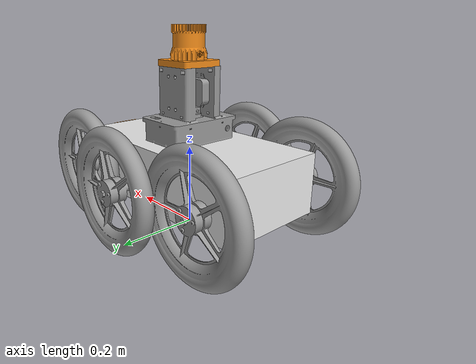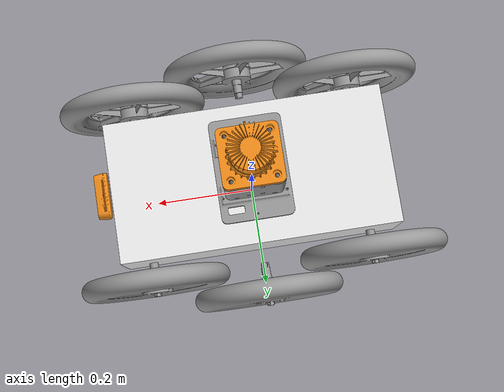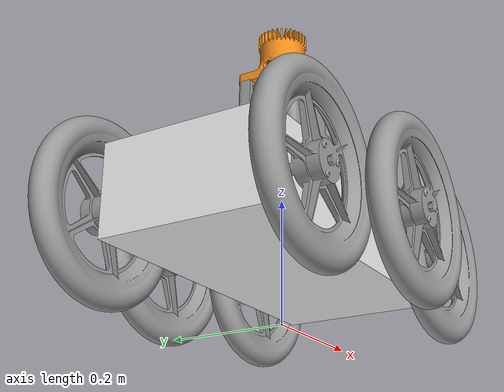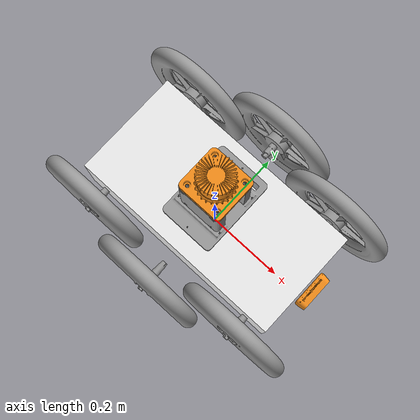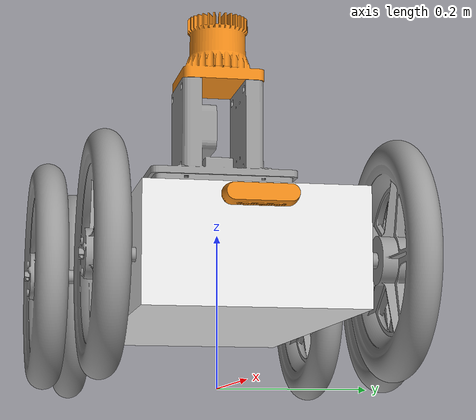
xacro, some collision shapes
<?xml version='1.0'?>
<robot name="espeleo" xmlns:xacro="http://www.ros.org/wiki/xacro">

  <xacro:property name="PI" value="3.1415926535897931"/>
  <xacro:property name="Half_PI" value="1.570796327"/>

  <xacro:property name="chassisGround" value="0.15"/>
  <xacro:property name="chassisHeight" value="0.145"/>
  <xacro:property name="chassisLength" value="0.54"/>
  <xacro:property name="chassisWidth" value="0.27"/>
  <xacro:property name="chassisMass" value="0.5"/>

  <xacro:property name="wheelWidth" value="0.043"/>
  <xacro:property name="wheelRadius" value="0.14"/>

  <xacro:property name="wheelPos_x" value="0.215"/>
  <xacro:property name="wheelPos_y" value="0.175"/>
  <xacro:property name="wheelMass" value="0.2"/>

  <xacro:include filename="$(find espeleo_description)/urdf/espeleo_xacro/espeleo.gazebo" />
  <xacro:include filename="$(find espeleo_description)/urdf/espeleo_xacro/materials.xacro" />
  <xacro:include filename="$(find espeleo_description)/urdf/espeleo_xacro/macros_espeleo.xacro" />

  <!--					Espeleo Configurations					 -->

  <!-- If you need to use EspeleoRobo with tower configuration use this include-->
  <xacro:include filename="$(find espeleo_description)/urdf/espeleo_xacro/espeleo_sensors.xacro" />

  <!-- If you need to use EspeleoRobo with PanTilt configuration use this include-->

  <!-- For the sensorless EspeleoRobo comment the two includes above  -->

  <link name="base_link" />

  <joint name="base_joint" type="fixed">
    <axis xyz="0 0 0" />
    <origin xyz="0 0 .15 " rpy="0 0 0"/>
    <parent link="base_link"/>
    <child link="chassis"/>
  </joint>

  <link name='chassis'>

    <collision>

      <origin xyz="0 0 0" rpy="0 0 0"/>
      <geometry>
        <box size="${chassisLength} ${chassisWidth} ${chassisHeight}"/>
      </geometry>

    </collision>

    <visual>

      <origin xyz="-0.283 -0.23 0.0752" rpy="${-Half_PI} 0 0"/>
      <geometry>
        <mesh filename="package://espeleo_description/urdf/stl/Espeleo-22.STL" scale="0.001 0.001 0.001"/>
      </geometry>
      <material name="white"/>

    </visual>

    <inertial>

      <origin xyz="0 0 ${chassisGround}" rpy="0 0 0"/>
      <mass value="${chassisMass}"/>
      <box_inertia m="${chassisMass}" x="${chassisLength}" y="${chassisWidth}" z="0"/>

    </inertial>

  </link>

  <wheel lr="left_front" x_pos="${wheelPos_x}" y_pos="${wheelPos_y}" rot="0"/>
  <wheel lr="left_middle" x_pos="0.0" y_pos="0.225" rot="0"/>
  <wheel lr="left_back" x_pos="-${wheelPos_x}" y_pos="${wheelPos_y}" rot="0"/>
  <wheel lr="right_front" x_pos="${wheelPos_x}" y_pos="-${wheelPos_y}" rot="${PI}"/>
  <wheel lr="right_middle" x_pos="0.0" y_pos="-0.225" rot="${PI}"/>
  <wheel lr="right_back" x_pos="-${wheelPos_x}" y_pos="-${wheelPos_y}" rot="${PI}"/>

  <!-- Imu -->

  <link name="imu_link"/>

   <joint name="imu_joint" type="fixed">

    <axis xyz="0 1 0" />
    <origin xyz="0.1275 -0.0175 0.0445" rpy="0 0 0"/>
    <parent link="chassis"/>
    <child link="imu_link"/>

  </joint>

  <!-- GPS -->
  <link name="gps_antenna"/>

  <joint name="gps_antenna_joint" type="fixed">

    <axis xyz="0 0 0" />
    <origin xyz="0 0 0.1 " rpy="0 0 0"/>
    <parent link="imu_link"/>
    <child link="gps_antenna"/>

  </joint>

</robot>

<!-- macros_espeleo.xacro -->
<robot>

  <macro name="cylinder_inertia" params="m r h">
    <inertia
      ixx="${m*(3*r*r+h*h)/12}" ixy = "0" ixz = "0"
      iyy="${m*(3*r*r+h*h)/12}" iyz = "0"
      izz="${m*r*r/2}"
    />
  </macro>

  <macro name="box_inertia" params="m x y z">
    <inertia
      ixx="${m*(x*x+z*z)/12}" ixy = "0" ixz = "0"
      iyy="${m*(y*y+z*z)/12}" iyz = "0"
      izz="${m*(x*x+y*y)/12}"
    />
  </macro>

  <macro name="sphere_inertia" params="m r">
    <inertia
      ixx="${2*m*r*r/5}" ixy = "0" ixz = "0"
      iyy="${2*m*r*r/5}" iyz = "0"
      izz="${2*m*r*r/5}"
    />
  </macro>

  <!-- params = left/right XPosition YPosition -->

  <macro name="wheel" params="lr x_pos y_pos rot">
    <link name="${lr}_wheel">
      <collision>
        <origin xyz="0 0 0" rpy="${PI/2} 0 0" />
        <geometry>
          <cylinder length="${wheelWidth}" radius="${wheelRadius}"/>
        </geometry>
      </collision>

      <visual>
        <origin xyz="0 0 0" rpy="0 0 0" />
        <geometry>
          <mesh filename="package://espeleo_description/urdf/stl/roda_esquerda.stl" />
        </geometry>
        <material name="grey"/>
      </visual>

      <inertial>
        <origin xyz="0 0 0" rpy="${PI/2} 0 0 " />
        <mass value="${wheelMass}"/>
        <cylinder_inertia m="${wheelMass}" r="${wheelRadius}" h="${wheelWidth}"/>
      </inertial>
    </link>

    <gazebo reference="${lr}_wheel">
      <mu1 value="1"/>
      <mu2 value="1"/>
      <kp  value="1000000.0" />
      <kd  value="10.0" />
      <fdir1 value="0 0 1"/>
      <minDepth>0.001</minDepth>
      <maxContacts>1</maxContacts>
      <material>Gazebo/Red</material>
    </gazebo>

    <joint name="${lr}_wheel_joint" type="continuous">
      <parent link="chassis"/>
      <child link="${lr}_wheel"/>
      <origin xyz="${x_pos} ${y_pos} -0.008" rpy="0 0 ${rot}" />
      <axis xyz="0 1 0" rpy="0 0 0" />
      <limit effort="100" velocity="10000"/>
      <joint_properties damping="0.0" friction="0.0"/>
    </joint>

    <transmission name="${lr}_trans">
      <type>transmission_interface/SimpleTransmission</type>
      <joint name="${lr}_wheel_joint">
        <hardwareInterface>EffortJointInterface</hardwareInterface>
      </joint>
      <actuator name="${lr}Motor">
        <hardwareInterface>EffortJointInterface</hardwareInterface>
        <mechanicalReduction>10</mechanicalReduction>
      </actuator>
    </transmission>
  </macro>

  <macro name="leg" params="lr x_pos y_pos rot">
    <link name="${lr}_leg">
      <collision>
        <origin xyz="0 0 0" rpy="0 0 ${rot}" />
        <geometry>
	  <mesh filename="package://espeleo_description/urdf/stl/leg.stl" />
        </geometry>
      </collision>

      <visual>
        <origin xyz="0 0 0" rpy="0 0 ${rot}" />
        <geometry>
	  <mesh filename="package://espeleo_description/urdf/stl/leg.stl" />
        </geometry>
        <material name="grey"/>
      </visual>

      <inertial>
        <origin xyz="0 0 0" rpy="0 0 ${rot}" />
        <mass value="${wheelMass}"/>
        <cylinder_inertia m="${wheelMass}" r="${wheelRadius}" h="${wheelWidth}"/>
      </inertial>
    </link>

    <gazebo reference="${lr}">
      <mu1 value="1"/>
      <mu2 value="1"/>
      <kp  value="1000000.0" />
      <kd  value="10.0" />
      <fdir1 value="0 0 1"/>
      <minDepth>0.001</minDepth>
      <maxContacts>1</maxContacts>
      <material>Gazebo/Red</material>
    </gazebo>

    <joint name="${lr}" type="revolute">

      <parent link="chassis"/>
      <child link="${lr}_leg"/>
      <origin xyz="${x_pos} ${y_pos} -0.008" rpy="0 0 ${rot}" />
      <axis xyz="0 1 0" rpy="0 0 0" />
      <limit effort="100" lower="-3.14" upper="3.14" velocity="100"/>
      <joint_properties damping="0.0" friction="0.0"/>

    </joint>

    <transmission name="${lr}_trans">
      <type>transmission_interface/SimpleTransmission</type>
      <joint name="${lr}_leg_joint">
        <hardwareInterface>EffortJointInterface</hardwareInterface>
      </joint>
      <actuator name="${lr}Motor">
        <hardwareInterface>EffortJointInterface</hardwareInterface>
        <mechanicalReduction>10</mechanicalReduction>
      </actuator>
    </transmission>
  </macro>

  <macro name="star" params="lr x_pos y_pos rot">
    <link name="${lr}_star">
      <collision>
        <origin xyz="-0.134 -0.025 -0.115" rpy="0 0 0" />
        <geometry>
	  <mesh filename="package://espeleo_description/urdf/stl/rodaEstrela.STL" scale="0.001 0.001 0.001" />
        </geometry>
      </collision>

      <visual>
        <origin xyz="-0.134 -0.025 -0.115" rpy="0 0 0" />
        <geometry>
	  <mesh filename="package://espeleo_description/urdf/stl/rodaEstrela.STL" scale="0.001 0.001 0.001" />
        </geometry>
        <material name="grey"/>
      </visual>

      <inertial>
        <origin xyz="0 0 0" rpy="0 0 0" />
        <mass value="${wheelMass}"/>
        <cylinder_inertia m="${wheelMass}" r="${wheelRadius}" h="${wheelWidth}"/>
      </inertial>
    </link>

    <gazebo reference="${lr}">
      <mu1 value="1"/>
      <mu2 value="1"/>
      <kp  value="1000000.0" />
      <kd  value="10.0" />
      <fdir1 value="0 0 1"/>
      <minDepth>0.001</minDepth>
      <maxContacts>1</maxContacts>
      <material>Gazebo/Red</material>
    </gazebo>

    <joint name="${lr}" type="revolute">

      <parent link="chassis"/>
      <child link="${lr}_star"/>
      <origin xyz="${x_pos} ${y_pos} -0.008" rpy="0 0 ${rot}" />
      <axis xyz="0 1 0" rpy="0 0 0" />
      <limit effort="100" lower="-3.14" upper="3.14" velocity="100"/>
      <joint_properties damping="0.0" friction="0.0"/>

    </joint>

    <transmission name="${lr}_trans">
      <type>transmission_interface/SimpleTransmission</type>
      <joint name="${lr}_star_joint">
        <hardwareInterface>EffortJointInterface</hardwareInterface>
      </joint>
      <actuator name="${lr}Motor">
        <hardwareInterface>EffortJointInterface</hardwareInterface>
        <mechanicalReduction>10</mechanicalReduction>
      </actuator>
    </transmission>
  </macro>

</robot>

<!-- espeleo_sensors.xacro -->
<robot>

  <!-- sensor_tower -->

  <link name="sensor_tower">

    <collision>
      <origin xyz="0 0 0.109" rpy="0 0 0"/>
      <geometry>
          <box size="0.19 0.19 0.18"/>
      </geometry>
    </collision>

    <visual>

      <origin xyz="-0.08 0.2 0" rpy="${Half_PI} 0 0"/>
      <geometry>
        <mesh filename="package://espeleo_description/urdf/stl/Torre.STL" scale="0.001 0.001 0.001"/>
      </geometry>
      <material name="grey"/>

    </visual>

    <inertial>

      <mass value="2" />
      <origin xyz="0 0 0" rpy="0 0 0"/>
      <inertia ixx="1e-6" ixy="0" ixz="0" iyy="1e-6" iyz="0" izz="1e-6" />

    </inertial>

  </link>

  <joint name="sensor_tower_joint" type="fixed">

    <axis xyz="0 1 0" />
    <origin xyz=".0 .0 .055 " rpy="0 0 0"/>
    <parent link="chassis"/>
    <child link="sensor_tower"/>

  </joint>

  <!-- Laser Lidar -->

  <link name="os1_sensor">

    <collision>

      <origin xyz="0 0 0.045" rpy="0 0 0"/>
      <geometry>
          <box size="0.13 0.13 0.095"/>
      </geometry>

    </collision>

    <visual>

      <origin xyz="-0.09 -0.054 -0.01" rpy="${Half_PI} 0 ${Half_PI}"/>
      <geometry>
        <mesh filename="package://espeleo_description/urdf/stl/Lidar.STL" scale="0.001 0.001 0.001"/>
      </geometry>
      <material name="orange"/>

    </visual>

  </link>

  <joint name="laser_joint" type="fixed">

    <axis xyz="0 0 0" />
    <origin xyz="0 0 .205 " rpy="0 0 0"/>
    <parent link="sensor_tower"/>
    <child link="os1_sensor"/>

  </joint>

  <!-- Camera T265  Nao se utiliza esta TF este link foi criado apenas com finalidade de visualizacao-->

  <link name="only_visual_t265">

    <collision>

      <origin xyz="0 0 0" rpy="0 0 0"/>
      <geometry>
          <box size="0. 0. 0."/>
      </geometry>

    </collision>

    <visual>

      <origin xyz="0.05 -0.012 0.004" rpy="0 ${PI} 0"/>
      <geometry>
        <mesh filename="package://espeleo_description/urdf/stl/realsense_t265.STL" scale="0.001 0.001 0.001"/>
      </geometry>
      <material name="orange"/>

    </visual>

  </link>

  <joint name="realsense_t265_joint" type="fixed">

    <axis xyz="0 0 0" />
    <origin xyz="0.06 0 .18 " rpy="-${Half_PI} ${PI} ${Half_PI}"/>
    <parent link="sensor_tower"/>
    <child link="only_visual_t265"/>

  </joint>

  <link name="d435i_link">

    <collision>

      <origin xyz="0.01 0 0" rpy="0 0 ${PI}"/>
      <geometry>
          <box size="0.027 0.09 0.025"/>
      </geometry>

    </collision>

    <visual>

      <origin xyz="0.012 -0.045 -0.005" rpy="0 0 ${Half_PI}"/>
      <geometry>
        <mesh filename="package://espeleo_description/urdf/stl/realsense_d435.STL" scale="0.001 0.001 0.001"/>
      </geometry>
      <material name="orange"/>

    </visual>

  </link>

  <joint name="realsense_d435_joint" type="fixed">

    <axis xyz="0 0 0" />
    <origin xyz="0.28 0 .055 " rpy="0 ${Half_PI} 0"/>
    <parent link="chassis"/>
    <child link="d435i_link"/>

  </joint>

  <!-- Camera D435i simulada -->

</robot>
